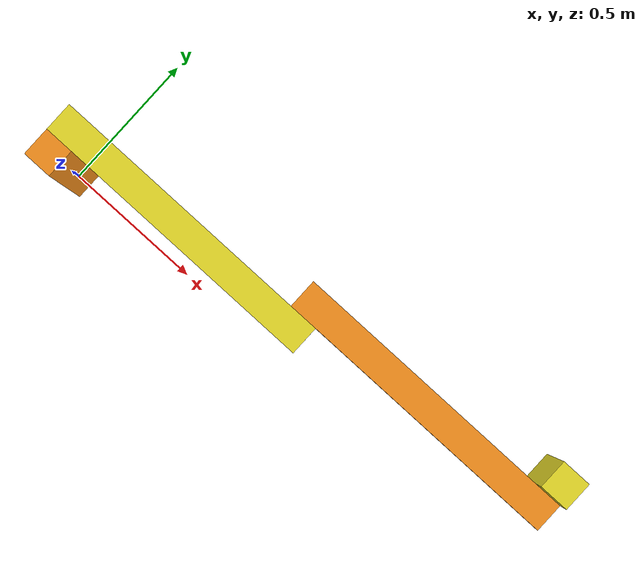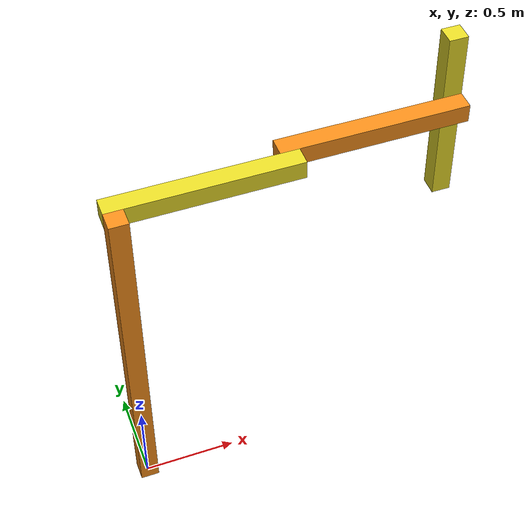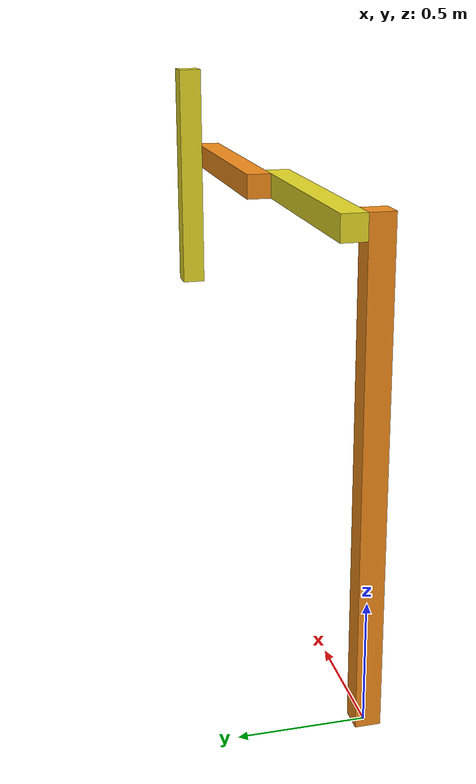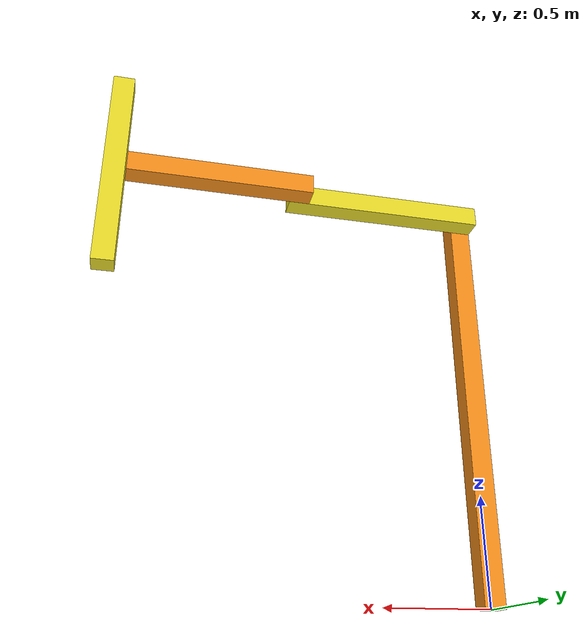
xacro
<?xml version="1.0"?>
<!-- Revolute-Revolute Manipulator -->
<!--
Copied and modified from ROS1 example -
https://github.com/ros-simulation/gazebo_ros_demos/blob/kinetic-devel/rrbot_description/urdf/rrbot.xacro
-->
<robot xmlns:xacro="http://www.ros.org/wiki/xacro" name="2dof_robot">
  <xacro:arg name="prefix" default="" />

  <!-- Import RRBot macro -->
  <xacro:include filename="$(find rrbot_description)/urdf/rrbot_description.urdf.xacro" />

  <!-- Import Rviz colors -->
  <xacro:include filename="$(find rrbot_description)/gazebo/rrbot.materials.xacro" />

  <!-- Import RRBot ros2_control description -->
  <xacro:include filename="$(find rrbot_description)/ros2_control/rrbot.ros2_control.xacro" />

  <xacro:include filename="$(find rrbot_description)/gazebo/rrbot.gazebo.xacro" />

  <!-- Used for fixing robot -->
  <link name="world"/>
  <gazebo reference="world">
    <static>true</static>
  </gazebo>

  <xacro:rrbot parent="world" prefix="$(arg prefix)">
    <origin xyz="0 0 0" rpy="0 0 0" />
  </xacro:rrbot>

  <xacro:rrrbot_gazebo prefix="$(arg prefix)" />

  <xacro:rrrbot_ros2_control
    name="RRBot" prefix="$(arg prefix)" />

</robot>

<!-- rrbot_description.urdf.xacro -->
<robot xmlns:xacro="http://www.ros.org/wiki/xacro">

  <xacro:macro name="rrbot" params="parent prefix *origin">

  <!-- Constants for robot dimensions -->
  <xacro:property name="mass" value="1" /> <!-- arbitrary value for mass -->
  <xacro:property name="width" value="0.1" /> <!-- Square dimensions (widthxwidth) of beams -->
  <xacro:property name="height1" value="2" /> <!-- Link 1 -->
  <xacro:property name="height2" value="1" /> <!-- Link 2 -->
  <xacro:property name="height3" value="1" /> <!-- Link 3 -->
  <xacro:property name="height4" value="1" /> <!-- Link 4 -->
  <xacro:property name="camera_link" value="0.05" /> <!-- Size of square 'camera' box -->
  <xacro:property name="axel_offset" value="0.05" /> <!-- Space btw top of beam and the each joint -->

  <joint name="${prefix}base_joint" type="fixed">
    <xacro:insert_block name="origin" />
    <parent link="${parent}"/>
    <child link="${prefix}base_link" />
  </joint>

  <!-- Base Link -->
  <link name="${prefix}base_link">
    <collision>
      <origin xyz="0 0 ${height1/2}" rpy="0 0 0"/>
      <geometry>
        <box size="${width} ${width} ${height1}"/>
      </geometry>
    </collision>

    <visual>
      <origin xyz="0 0 ${height1/2}" rpy="0 0 0"/>
      <geometry>
        <box size="${width} ${width} ${height1}"/>
      </geometry>
      <material name="orange"/>
    </visual>

    <inertial>
      <origin xyz="0 0 ${height1/2}" rpy="0 0 0"/>
      <mass value="${mass}"/>
      <inertia
        ixx="${mass / 12.0 * (width*width + height1*height1)}" ixy="0.0" ixz="0.0"
        iyy="${mass / 12.0 * (height1*height1 + width*width)}" iyz="0.0"
        izz="${mass / 12.0 * (width*width + width*width)}"/>
      </inertial>
    </link>

    <joint name="${prefix}joint1" type="continuous">
      <parent link="${prefix}base_link"/>
      <child link="${prefix}link1"/>
      <origin xyz="0 ${width} ${height1 - axel_offset}" rpy="0 1.5708 0"/>
      <axis xyz="1 0 0"/>
      <dynamics damping="0.7"/>
    </joint>

    <!-- Middle Link -->
    <link name="${prefix}link1">
      <collision>
        <origin xyz="0 0 ${height2/2 - axel_offset}" rpy="0 0 0"/>
        <geometry>
          <box size="${width} ${width} ${height2}"/>
        </geometry>
      </collision>

      <visual>
        <origin xyz="0 0 ${height2/2 - axel_offset}" rpy="0 0 0"/>
        <geometry>
          <box size="${width} ${width} ${height2}"/>
        </geometry>
        <material name="yellow"/>
      </visual>

      <inertial>
        <origin xyz="0 0 ${height2/2 - axel_offset}" rpy="0 0 0"/>
        <mass value="${mass}"/>
        <inertia
          ixx="${mass / 12.0 * (width*width + height2*height2)}" ixy="0.0" ixz="0.0"
          iyy="${mass / 12.0 * (height2*height2 + width*width)}" iyz="0.0"
          izz="${mass / 12.0 * (width*width + width*width)}"/>
        </inertial>
      </link>

      <joint name="${prefix}joint2" type="continuous">
        <parent link="${prefix}link1"/>
        <child link="${prefix}link2"/>
        <origin xyz="0 ${width} ${height2 - axel_offset*2}" rpy="0 0 0"/>
        <axis xyz="1 0 0"/>
        <dynamics damping="0.7"/>
      </joint>

      <!-- Top Link -->
      <link name="${prefix}link2">
        <collision>
          <origin xyz="0 0 ${height3/2 - axel_offset}" rpy="0 0 0"/>
          <geometry>
            <box size="${width} ${width} ${height3}"/>
          </geometry>
        </collision>

        <visual>
          <origin xyz="0 0 ${height3/2 - axel_offset}" rpy="0 0 0"/>
          <geometry>
            <box size="${width} ${width} ${height3}"/>
          </geometry>
          <material name="orange"/>
        </visual>

        <inertial>
          <origin xyz="0 0 ${height3/2 - axel_offset}" rpy="0 0 0"/>
          <mass value="${mass}"/>
          <inertia
            ixx="${mass / 12.0 * (width*width + height3*height3)}" ixy="0.0" ixz="0.0"
            iyy="${mass / 12.0 * (height3*height3 + width*width)}" iyz="0.0"
            izz="${mass / 12.0 * (width*width + width*width)}"/>
          </inertial>
        </link>

        <joint name="${prefix}joint3" type="prismatic">
        <parent link="${prefix}link2"/>
        <child link="${prefix}link3"/>
        <limit effort="1000.0" lower="-0.38" upper="0" velocity="0.5"/>
        <origin xyz="0 ${width} ${height3 - axel_offset*2}" rpy="0 0 0"/>
        <axis xyz="1 0 0"/>
        <dynamics damping="0.7" friction="11"/>
      </joint>

      <!-- Prismatic Link -->
      <link name="${prefix}link3">
        <collision>
          <origin xyz="${height4/2 - axel_offset - 0.35} 0 0" rpy="0 1.5708 0"/>
          <geometry>
            <box size="${width} ${width} ${height4}"/>
          </geometry>
        </collision>

        <visual>
          <origin xyz="${height4/2 - axel_offset - 0.35} 0 0" rpy="0 1.5708 0"/>
          <geometry>
            <box size="${width} ${width} ${height4}"/>
          </geometry>
          <material name="yellow"/>
        </visual>

        <inertial>
          <origin xyz="${height4/2 - axel_offset - 0.35} 0 0" rpy="0 1.5708 0"/>
          <mass value="${mass}"/>
          <inertia
            ixx="${mass / 12.0 * (width*width + height4*height4)}" ixy="0.0" ixz="0.0"
            iyy="${mass / 12.0 * (height4*height4 + width*width)}" iyz="0.0"
            izz="${mass / 12.0 * (width*width + width*width)}"/>
          </inertial>
        </link>

        <joint name="${prefix}tool_joint" type="fixed">
          <origin xyz="0 0 1" rpy="0 0 0" />
          <parent link="${prefix}link3"/>
          <child link="${prefix}tool_link" />
        </joint>

        <!-- Tool Link -->
        <link name="${prefix}tool_link">
        </link>

  </xacro:macro>

</robot>
